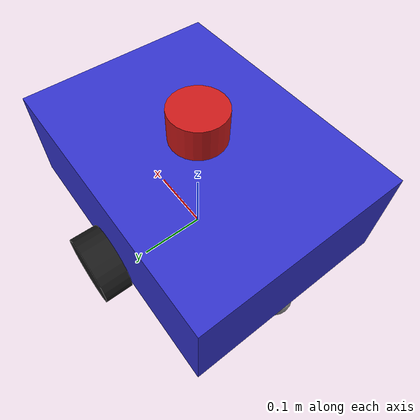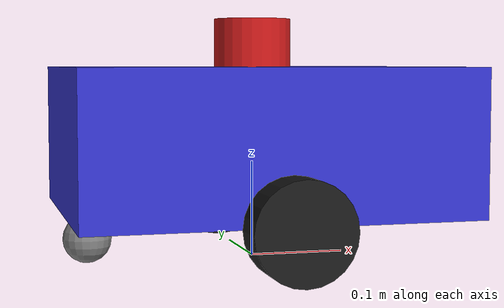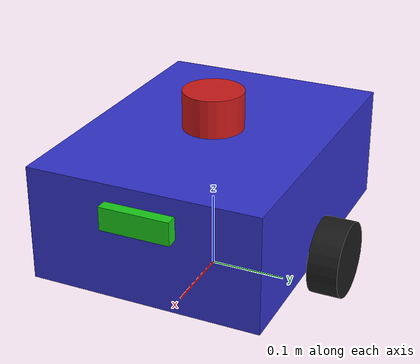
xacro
<?xml version="1.0"?>
<robot xmlns:xacro="http://www.ros.org/wiki/xacro" name="flywheel_bot">

  <!-- Properties -->
  <xacro:property name="chassis_length" value="0.4"/>
  <xacro:property name="chassis_width" value="0.3"/>
  <xacro:property name="chassis_height" value="0.15"/>
  <xacro:property name="chassis_mass" value="5.0"/>
  <xacro:property name="wheel_radius" value="0.05"/>
  <xacro:property name="wheel_width" value="0.04"/>
  <xacro:property name="wheel_mass" value="0.5"/>
  <xacro:property name="wheel_separation" value="0.34"/>
  <xacro:property name="caster_radius" value="0.025"/>
  <xacro:property name="lidar_height" value="0.05"/>
  <xacro:property name="camera_size" value="0.03"/>

  <!-- Inertia macros -->
  <xacro:macro name="box_inertia" params="m x y z">
    <inertial>
      <mass value="${m}"/>
      <inertia ixx="${m*(y*y+z*z)/12}" ixy="0" ixz="0"
               iyy="${m*(x*x+z*z)/12}" iyz="0"
               izz="${m*(x*x+y*y)/12}"/>
    </inertial>
  </xacro:macro>

  <xacro:macro name="cylinder_inertia" params="m r h">
    <inertial>
      <mass value="${m}"/>
      <inertia ixx="${m*(3*r*r+h*h)/12}" ixy="0" ixz="0"
               iyy="${m*(3*r*r+h*h)/12}" iyz="0"
               izz="${m*r*r/2}"/>
    </inertial>
  </xacro:macro>

  <xacro:macro name="sphere_inertia" params="m r">
    <inertial>
      <mass value="${m}"/>
      <inertia ixx="${2*m*r*r/5}" ixy="0" ixz="0"
               iyy="${2*m*r*r/5}" iyz="0"
               izz="${2*m*r*r/5}"/>
    </inertial>
  </xacro:macro>

  <!-- ==================== BASE ==================== -->
  <link name="base_footprint"/>

  <link name="base_link">
    <visual>
      <geometry>
        <box size="${chassis_length} ${chassis_width} ${chassis_height}"/>
      </geometry>
      <material name="blue">
        <color rgba="0.2 0.2 0.8 1.0"/>
      </material>
    </visual>
    <collision>
      <geometry>
        <box size="${chassis_length} ${chassis_width} ${chassis_height}"/>
      </geometry>
    </collision>
    <xacro:box_inertia m="${chassis_mass}" x="${chassis_length}" y="${chassis_width}" z="${chassis_height}"/>
  </link>

  <joint name="base_joint" type="fixed">
    <parent link="base_footprint"/>
    <child link="base_link"/>
    <origin xyz="0 0 ${wheel_radius + chassis_height/2}" rpy="0 0 0"/>
  </joint>

  <!-- ==================== WHEELS ==================== -->
  <xacro:macro name="wheel" params="prefix y_offset">
    <link name="${prefix}_wheel">
      <visual>
        <geometry>
          <cylinder radius="${wheel_radius}" length="${wheel_width}"/>
        </geometry>
        <material name="black">
          <color rgba="0.1 0.1 0.1 1.0"/>
        </material>
      </visual>
      <collision>
        <geometry>
          <cylinder radius="${wheel_radius}" length="${wheel_width}"/>
        </geometry>
        <surface>
          <friction>
            <ode>
              <mu>1.0</mu>
              <mu2>1.0</mu2>
            </ode>
          </friction>
        </surface>
      </collision>
      <xacro:cylinder_inertia m="${wheel_mass}" r="${wheel_radius}" h="${wheel_width}"/>
    </link>

    <joint name="${prefix}_wheel_joint" type="continuous">
      <parent link="base_link"/>
      <child link="${prefix}_wheel"/>
      <origin xyz="0 ${y_offset} ${-chassis_height/2}" rpy="${-pi/2} 0 0"/>
      <axis xyz="0 0 1"/>
    </joint>
  </xacro:macro>

  <xacro:wheel prefix="left" y_offset="${wheel_separation/2}"/>
  <xacro:wheel prefix="right" y_offset="${-wheel_separation/2}"/>

  <!-- ==================== CASTER ==================== -->
  <link name="caster_wheel">
    <visual>
      <geometry>
        <sphere radius="${caster_radius}"/>
      </geometry>
      <material name="grey">
        <color rgba="0.5 0.5 0.5 1.0"/>
      </material>
    </visual>
    <collision>
      <geometry>
        <sphere radius="${caster_radius}"/>
      </geometry>
      <surface>
        <friction>
          <ode>
            <mu>0.0</mu>
            <mu2>0.0</mu2>
          </ode>
        </friction>
      </surface>
    </collision>
    <xacro:sphere_inertia m="0.1" r="${caster_radius}"/>
  </link>

  <joint name="caster_joint" type="fixed">
    <parent link="base_link"/>
    <child link="caster_wheel"/>
    <origin xyz="${-chassis_length/2 + caster_radius} 0 ${-chassis_height/2 - wheel_radius + caster_radius}" rpy="0 0 0"/>
  </joint>

  <!-- ==================== LIDAR ==================== -->
  <link name="lidar_link">
    <visual>
      <geometry>
        <cylinder radius="0.04" length="${lidar_height}"/>
      </geometry>
      <material name="red">
        <color rgba="0.8 0.1 0.1 1.0"/>
      </material>
    </visual>
    <collision>
      <geometry>
        <cylinder radius="0.04" length="${lidar_height}"/>
      </geometry>
    </collision>
    <xacro:cylinder_inertia m="0.2" r="0.04" h="${lidar_height}"/>
  </link>

  <joint name="lidar_joint" type="fixed">
    <parent link="base_link"/>
    <child link="lidar_link"/>
    <origin xyz="0 0 ${chassis_height/2 + lidar_height/2}" rpy="0 0 0"/>
  </joint>

  <!-- ==================== DEPTH CAMERA ==================== -->
  <link name="depth_camera_link">
    <visual>
      <geometry>
        <box size="${camera_size} ${camera_size*3} ${camera_size}"/>
      </geometry>
      <material name="green">
        <color rgba="0.1 0.8 0.1 1.0"/>
      </material>
    </visual>
    <collision>
      <geometry>
        <box size="${camera_size} ${camera_size*3} ${camera_size}"/>
      </geometry>
    </collision>
    <xacro:box_inertia m="0.1" x="${camera_size}" y="${camera_size*3}" z="${camera_size}"/>
  </link>

  <joint name="depth_camera_joint" type="fixed">
    <parent link="base_link"/>
    <child link="depth_camera_link"/>
    <origin xyz="${chassis_length/2} 0 ${chassis_height/4}" rpy="0 0 0"/>
  </joint>

  <link name="depth_camera_optical"/>
  <joint name="depth_camera_optical_joint" type="fixed">
    <parent link="depth_camera_link"/>
    <child link="depth_camera_optical"/>
    <origin xyz="0 0 0" rpy="${-pi/2} 0 ${-pi/2}"/>
  </joint>

  <!-- ==================== IMU ==================== -->
  <link name="imu_link">
    <visual>
      <geometry>
        <box size="0.02 0.02 0.01"/>
      </geometry>
      <material name="yellow">
        <color rgba="0.9 0.9 0.1 1.0"/>
      </material>
    </visual>
    <xacro:box_inertia m="0.01" x="0.02" y="0.02" z="0.01"/>
  </link>

  <joint name="imu_joint" type="fixed">
    <parent link="base_link"/>
    <child link="imu_link"/>
    <origin xyz="0 0 0" rpy="0 0 0"/>
  </joint>

  <!-- ==================== GAZEBO PLUGINS ==================== -->

  <!-- Diff drive -->
  <gazebo>
    <plugin filename="gz-sim-diff-drive-system" name="gz::sim::systems::DiffDrive">
      <left_joint>left_wheel_joint</left_joint>
      <right_joint>right_wheel_joint</right_joint>
      <wheel_separation>${wheel_separation}</wheel_separation>
      <wheel_radius>${wheel_radius}</wheel_radius>
      <max_linear_acceleration>1.0</max_linear_acceleration>
      <max_angular_acceleration>2.0</max_angular_acceleration>
      <topic>cmd_vel</topic>
      <odom_topic>odom</odom_topic>
      <tf_topic>tf</tf_topic>
      <frame_id>odom</frame_id>
      <child_frame_id>base_footprint</child_frame_id>
      <odom_publish_frequency>50</odom_publish_frequency>
    </plugin>
  </gazebo>

  <!-- Joint state publisher -->
  <gazebo>
    <plugin filename="gz-sim-joint-state-publisher-system" name="gz::sim::systems::JointStatePublisher">
      <joint_name>left_wheel_joint</joint_name>
      <joint_name>right_wheel_joint</joint_name>
      <topic>joint_states</topic>
    </plugin>
  </gazebo>

  <!-- Lidar sensor -->
  <gazebo reference="lidar_link">
    <sensor name="lidar" type="gpu_lidar">
      <topic>scan</topic>
      <update_rate>10</update_rate>
      <lidar>
        <scan>
          <horizontal>
            <samples>720</samples>
            <resolution>1</resolution>
            <min_angle>-3.14159</min_angle>
            <max_angle>3.14159</max_angle>
          </horizontal>
        </scan>
        <range>
          <min>0.12</min>
          <max>12.0</max>
          <resolution>0.01</resolution>
        </range>
      </lidar>
      <always_on>true</always_on>
      <visualize>true</visualize>
    </sensor>
  </gazebo>

  <!-- Depth camera -->
  <gazebo reference="depth_camera_link">
    <sensor name="depth_camera" type="depth_camera">
      <topic>depth_camera</topic>
      <update_rate>15</update_rate>
      <camera>
        <horizontal_fov>1.047</horizontal_fov>
        <image>
          <width>320</width>
          <height>240</height>
          <format>R_FLOAT32</format>
        </image>
        <clip>
          <near>0.1</near>
          <far>10.0</far>
        </clip>
      </camera>
      <always_on>true</always_on>
      <visualize>false</visualize>
    </sensor>
  </gazebo>

  <!-- IMU -->
  <gazebo reference="imu_link">
    <sensor name="imu" type="imu">
      <topic>imu</topic>
      <update_rate>100</update_rate>
      <imu>
        <angular_velocity>
          <x><noise type="gaussian"><mean>0</mean><stddev>0.0002</stddev></noise></x>
          <y><noise type="gaussian"><mean>0</mean><stddev>0.0002</stddev></noise></y>
          <z><noise type="gaussian"><mean>0</mean><stddev>0.0002</stddev></noise></z>
        </angular_velocity>
        <linear_acceleration>
          <x><noise type="gaussian"><mean>0</mean><stddev>0.017</stddev></noise></x>
          <y><noise type="gaussian"><mean>0</mean><stddev>0.017</stddev></noise></y>
          <z><noise type="gaussian"><mean>0</mean><stddev>0.017</stddev></noise></z>
        </linear_acceleration>
      </imu>
      <always_on>true</always_on>
    </sensor>
  </gazebo>

</robot>
